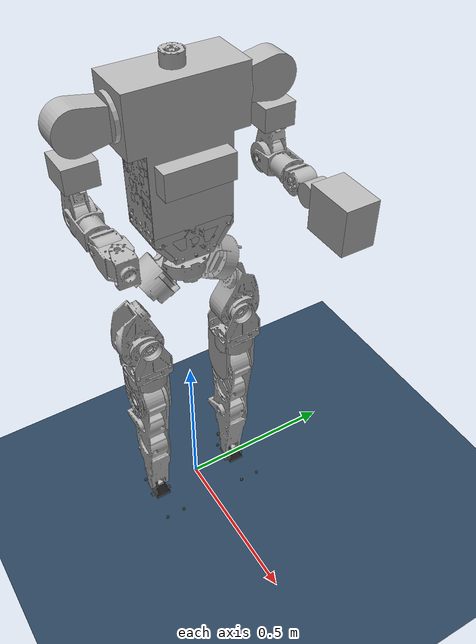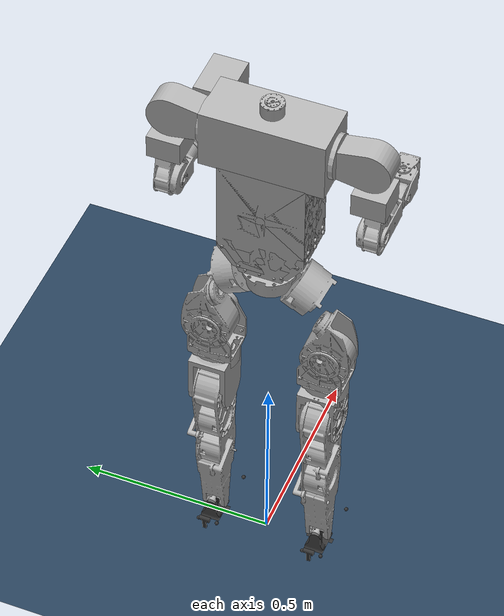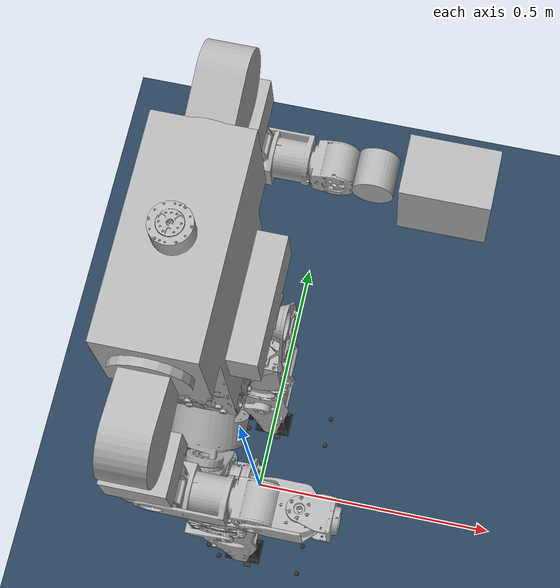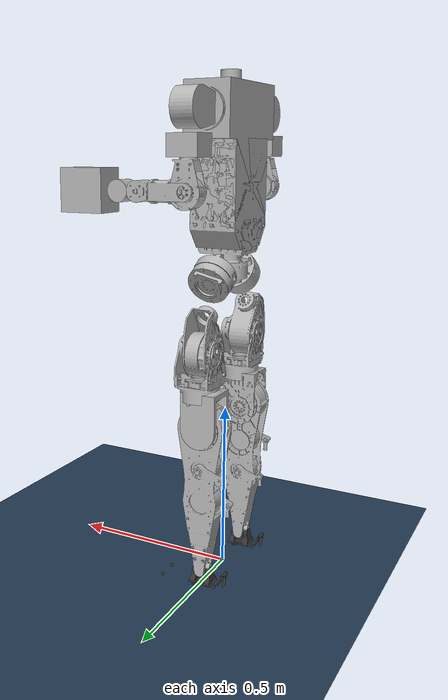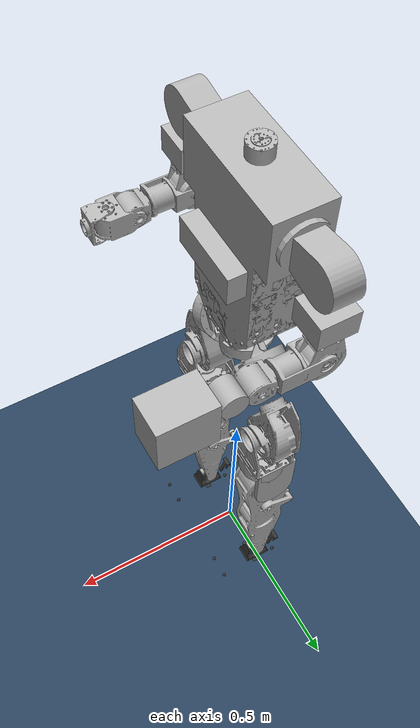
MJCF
<mujoco model="air_4.7">
  <compiler angle="radian" meshdir="../meshes"/>

  <default>
    <joint frictionloss="0.1"/>
  </default>

  <asset>
    <mesh name="pelvis_link.STL" file="pelvis_link.STL"/>
    <mesh name="waist_yaw_link.STL" file="waist_yaw_link.STL"/>
    <mesh name="waist_roll_link.STL" file="waist_roll_link.STL"/>
    <mesh name="torso_link.STL" file="torso_link.STL"/>
    <mesh name="right_shoulder_pitch_link.STL" file="right_shoulder_pitch_link.STL"/>
    <mesh name="right_shoulder_roll_link.STL" file="right_shoulder_roll_link.STL"/>
    <mesh name="right_shoulder_yaw_link.STL" file="right_shoulder_yaw_link.STL"/>
    <mesh name="right_elbow_link.STL" file="right_elbow_link.STL"/>
    <mesh name="right_wrist_roll_link.STL" file="right_wrist_roll_link.STL"/>
    <mesh name="right_wrist_yaw_link.STL" file="right_wrist_yaw_link.STL"/>
    <mesh name="right_wrist_pitch_link.STL" file="right_wrist_pitch_link.STL"/>
    <mesh name="left_shoulder_pitch_link.STL" file="left_shoulder_pitch_link.STL"/>
    <mesh name="left_shoulder_roll_link.STL" file="left_shoulder_roll_link.STL"/>
    <mesh name="left_shoulder_yaw_link.STL" file="left_shoulder_yaw_link.STL"/>
    <mesh name="left_elbow_link.STL" file="left_elbow_link.STL"/>
    <mesh name="left_wrist_roll_link.STL" file="left_wrist_roll_link.STL"/>
    <mesh name="left_wrist_yaw_link.STL" file="left_wrist_yaw_link.STL"/>
    <mesh name="left_wrist_pitch_link.STL" file="left_wrist_pitch_link.STL"/>
    <mesh name="right_hip_pitch_link.STL" file="right_hip_pitch_link.STL"/>
    <mesh name="right_hip_roll_link.STL" file="right_hip_roll_link.STL"/>
    <mesh name="right_hip_yaw_link.STL" file="right_hip_yaw_link.STL"/>
    <mesh name="right_knee_link.STL" file="right_knee_link.STL"/>
    <mesh name="right_ankle_pitch_link.STL" file="right_ankle_pitch_link.STL"/>
    <mesh name="right_ankle_roll_link.STL" file="right_ankle_roll_link.STL"/>
    <mesh name="left_hip_pitch_link.STL" file="left_hip_pitch_link.STL"/>
    <mesh name="left_hip_roll_link.STL" file="left_hip_roll_link.STL"/>
    <mesh name="left_hip_yaw_link.STL" file="left_hip_yaw_link.STL"/>
    <mesh name="left_knee_link.STL" file="left_knee_link.STL"/>
    <mesh name="left_ankle_pitch_link.STL" file="left_ankle_pitch_link.STL"/>
    <mesh name="left_ankle_roll_link.STL" file="left_ankle_roll_link.STL"/>
    <texture type="skybox" builtin="flat" rgb1="0 0 0" rgb2="0 0 0" width="512" height="3072"/>
    <texture type="2d" name="groundplane" builtin="checker" mark="edge" rgb1="0.2 0.3 0.4" rgb2="0.1 0.2 0.3" markrgb="0.8 0.8 0.8" width="300" height="300"/>
    <material name="groundplane" texture="groundplane" texuniform="true" texrepeat="5 5" reflectance="0.2"/>
  </asset>

  <worldbody>
    <light pos="1 0 3.5" dir="0 0 -1" directional="true"/>
    <body name="pelvis_link" pos="0 0 0.8835">
      <inertial pos="0.0000 0.0000 -0.0475" mass="1.655040" diaginertia="0.0187 0.0044 0.0193"/>
      <joint name="floating_base_joint" type="free" limited="false" actuatorfrclimited="false"/>
      <geom type="mesh" contype="0" conaffinity="0" group="1" density="0" rgba="0.7 0.7 0.7 1" mesh="pelvis_link.STL"/>
      <geom type="mesh" rgba="0.7 0.7 0.7 1" mesh="pelvis_link.STL"/>
      <site name="imu_in_pelvis" size="0.01" pos="0 0 0"/>
      <body name="waist_yaw_link" pos="0.0000 0.0000 0.0000" euler="0.0000 0.0000 0.0000">
        <joint name="waist_yaw_joint" pos="0 0 0" axis="0 0 1" range="0 0" limited="true" actuatorfrcrange="-88 88" armature="0.01017752"/>
        <inertial pos="0.0000 0.0000 0.0450" mass="2" diaginertia="0 0 0"/>
        <geom type="mesh" contype="0" conaffinity="0" group="1" density="0" rgba="0.7 0.7 0.7 1" mesh="waist_yaw_link.STL"/>
        <geom type="mesh" rgba="0.7 0.7 0.7 1" mesh="waist_yaw_link.STL"/>
        <body name="waist_roll_link" pos="0.0000 0.0000 0.0960" euler="0.0000 0.0000 0.0000">
          <joint name="waist_roll_joint" pos="0 0 0" axis="1 0 0" range="0 0" limited="true" actuatorfrcrange="-50 50" armature="0.00721945"/>
          <inertial pos="0.0000 0.0000 0.0000" mass="1" diaginertia="0 0 0"/>
          <geom type="mesh" contype="0" conaffinity="0" group="1" density="0" rgba="0.7 0.7 0.7 1" mesh="waist_roll_link.STL"/>
          <geom type="mesh" rgba="0.7 0.7 0.7 1" mesh="waist_roll_link.STL"/>
          <body name="torso_link" pos="0.0000 0.0000 0.0060" euler="0.0000 0.0000 0.0000">
            <joint name="torso_joint" pos="0 0 0" axis="0 0 1" range="0 0" limited="true" actuatorfrcrange="-200 200" armature="0.01017752"/>
            <inertial pos="0.0000 0.0000 0.2484" mass="16.454622" diaginertia="0.3370 0.2728 0.1102"/>
            <geom type="mesh" contype="0" conaffinity="0" group="1" density="0" rgba="0.7 0.7 0.7 1" mesh="torso_link.STL"/>
            <geom type="mesh" rgba="0.7 0.7 0.7 1" mesh="torso_link.STL"/>
            <site name="imu_in_torso" size="0.01" pos="0 0 0.2"/>
            <body name="right_shoulder_pitch_link" pos="0.0000 -0.1653 0.3727" euler="0.0000 0.0000 0.0000">
              <joint name="right_shoulder_pitch_joint" pos="0 0 0" axis="0 1 0" range="-2 2" actuatorfrcrange="-40 40" armature="0.003609725"/>
              <inertial pos="0.0000 -0.0638 0.0000" mass="2.595722" diaginertia="0.0015 0.0008 0.0012"/>
              <geom type="mesh" contype="0" conaffinity="0" group="1" density="0" rgba="0.7 0.7 0.7 1" mesh="right_shoulder_pitch_link.STL"/>
              <geom type="mesh" rgba="0.7 0.7 0.7 1" mesh="right_shoulder_pitch_link.STL"/>
              <body name="right_shoulder_roll_link" pos="0.0000 -0.08475 0.0000" euler="0.0000 0.0000 0.0000">
                <joint name="right_shoulder_roll_joint" pos="0 0 0" axis="1 0 0" range="-3.14 0" actuatorfrcrange="-40 40" armature="0.003609725"/>
                <inertial pos="0.0000 0.0000 -0.0930" mass="0.86543" diaginertia="0.0004 0.0004 0.0005"/>
                <geom type="mesh" contype="0" conaffinity="0" group="1" density="0" rgba="0.7 0.7 0.7 1" mesh="right_shoulder_roll_link.STL"/>
                <geom type="mesh" rgba="0.7 0.7 0.7 1" mesh="right_shoulder_roll_link.STL"/>
                <body name="right_shoulder_yaw_link" pos="0.0000 0.0000 -0.1230" euler="0.0000 0.0000 0.0000">
                  <joint name="right_shoulder_yaw_joint" pos="0 0 0" axis="0 0 1" range="-1.5 0.5" actuatorfrcrange="-20 20" armature="0.003609725"/>
                  <inertial pos="0.0000 0.0000 -0.0870" mass="0.796124" diaginertia="0.0002 0.0003 0.0003"/>
                  <geom type="mesh" contype="0" conaffinity="0" group="1" density="0" rgba="0.7 0.7 0.7 1" mesh="right_shoulder_yaw_link.STL"/>
                  <geom type="mesh" rgba="0.7 0.7 0.7 1" mesh="right_shoulder_yaw_link.STL"/>
                  <body name="right_elbow_link" pos="0.0000 0.0000 -0.0870" euler="0.0000 0.0000 0.0000">
                    <joint name="right_elbow_joint" pos="0 0 0" axis="0 1 0" range="-3 0" actuatorfrcrange="-20 20" armature="0.003609725"/>
                    <inertial pos="0.0825 0.0000 0.0000" mass="0.490651" diaginertia="0.0001 0.0001 0.0001"/>
                    <geom type="mesh" contype="0" conaffinity="0" group="1" density="0" rgba="0.7 0.7 0.7 1" mesh="right_elbow_link.STL"/>
                    <geom type="mesh" rgba="0.7 0.7 0.7 1" mesh="right_elbow_link.STL"/>
                    <body name="right_wrist_roll_link" pos="0.1025 0.0000 0.0000" euler="0.0000 0.0000 0.0000">
                      <joint name="right_wrist_roll_joint" pos="0 0 0" axis="1 0 0" range="-1 1" actuatorfrcrange="-10 10" armature="0.003609725"/>
                      <inertial pos="0.0355 0.0000 0.0000" mass="0.385933" diaginertia="0.0001 0.0001 0.0001"/>
                      <geom type="mesh" contype="0" conaffinity="0" group="1" density="0" rgba="0.7 0.7 0.7 1" mesh="right_wrist_roll_link.STL"/>
                      <geom type="mesh" rgba="0.7 0.7 0.7 1" mesh="right_wrist_roll_link.STL"/>
                      <body name="right_wrist_yaw_link" pos="0.0355 0.0000 0.0000" euler="0.0000 0.0000 0.0000">
                        <joint name="right_wrist_yaw_joint" pos="0 0 0" axis="0 0 1" range="-1 1" actuatorfrcrange="-10 10" armature="0.00425"/>
                        <inertial pos="0.0600 0.0000 0.0000" mass="0.497661" diaginertia="0.0001 0.0001 0.0001"/>
                        <geom type="mesh" contype="0" conaffinity="0" group="1" density="0" rgba="0.7 0.7 0.7 1" mesh="right_wrist_yaw_link.STL"/>
                        <geom type="mesh" rgba="0.7 0.7 0.7 1" mesh="right_wrist_yaw_link.STL"/>
                        <body name="right_wrist_pitch_link" pos="0.0600 0.0000 0.0000" euler="0.0000 0.0000 0.0000">
                          <joint name="right_wrist_pitch_joint" pos="0 0 0" axis="0 1 0" range="-0.5 0.5" actuatorfrcrange="-10 10" armature="0.00425"/>
                          <inertial pos="0.1050 0.0000 0.0000" mass="1" diaginertia="0.0026 0.0037 0.0029"/>
                          <geom type="mesh" contype="0" conaffinity="0" group="1" density="0" rgba="0.7 0.7 0.7 1" mesh="right_wrist_pitch_link.STL"/>
                          <geom type="mesh" rgba="0.7 0.7 0.7 1" mesh="right_wrist_pitch_link.STL"/>
                        </body>
                      </body>
                    </body>
                  </body>
                </body>
              </body>
            </body>
            <body name="left_shoulder_pitch_link" pos="0.0000 0.1653 0.3727" euler="0.0000 0.0000 0.0000">
              <joint name="left_shoulder_pitch_joint" pos="0 0 0" axis="0 1 0" range="-2 2" actuatorfrcrange="-40 40" armature="0.003609725"/>
              <inertial pos="0.0000 0.0638 0.0000" mass="2.595722" diaginertia="0.0015 0.0008 0.0012"/>
              <geom type="mesh" contype="0" conaffinity="0" group="1" density="0" rgba="0.7 0.7 0.7 1" mesh="left_shoulder_pitch_link.STL"/>
              <geom type="mesh" rgba="0.7 0.7 0.7 1" mesh="left_shoulder_pitch_link.STL"/>
              <body name="left_shoulder_roll_link" pos="0.0000 0.08475 0.0000" euler="0.0000 0.0000 0.0000">
                <joint name="left_shoulder_roll_joint" pos="0 0 0" axis="1 0 0" range="0 3.14" actuatorfrcrange="-40 40" armature="0.003609725"/>
                <inertial pos="0.0000 0.0000 -0.0930" mass="0.86543" diaginertia="0.0004 0.0004 0.0005"/>
                <geom type="mesh" contype="0" conaffinity="0" group="1" density="0" rgba="0.7 0.7 0.7 1" mesh="left_shoulder_roll_link.STL"/>
                <geom type="mesh" rgba="0.7 0.7 0.7 1" mesh="left_shoulder_roll_link.STL"/>
                <body name="left_shoulder_yaw_link" pos="0.0000 0.0000 -0.1230" euler="0.0000 0.0000 0.0000">
                  <joint name="left_shoulder_yaw_joint" pos="0 0 0" axis="0 0 1" range="-0.5 1.5" actuatorfrcrange="-20 20" armature="0.003609725"/>
                  <inertial pos="0.0000 0.0000 -0.0870" mass="0.796124" diaginertia="0.0002 0.0003 0.0003"/>
                  <geom type="mesh" contype="0" conaffinity="0" group="1" density="0" rgba="0.7 0.7 0.7 1" mesh="left_shoulder_yaw_link.STL"/>
                  <geom type="mesh" rgba="0.7 0.7 0.7 1" mesh="left_shoulder_yaw_link.STL"/>
                  <body name="left_elbow_link" pos="0.0000 0.0000 -0.0870" euler="0.0000 0.0000 0.0000">
                    <joint name="left_elbow_joint" pos="0 0 0" axis="0 1 0" range="-3 0" actuatorfrcrange="-20 20" armature="0.003609725"/>
                    <inertial pos="0.0825 0.0000 0.0000" mass="0.490651" diaginertia="0.0001 0.0001 0.0001"/>
                    <geom type="mesh" contype="0" conaffinity="0" group="1" density="0" rgba="0.7 0.7 0.7 1" mesh="left_elbow_link.STL"/>
                    <geom type="mesh" rgba="0.7 0.7 0.7 1" mesh="left_elbow_link.STL"/>
                    <body name="left_wrist_roll_link" pos="0.1025 0.0000 0.0000" euler="0.0000 0.0000 0.0000">
                      <joint name="left_wrist_roll_joint" pos="0 0 0" axis="1 0 0" range="-1 1" actuatorfrcrange="-10 10" armature="0.003609725"/>
                      <inertial pos="0.0355 0.0000 0.0000" mass="0.385933" diaginertia="0.0001 0.0001 0.0001"/>
                      <geom type="mesh" contype="0" conaffinity="0" group="1" density="0" rgba="0.7 0.7 0.7 1" mesh="left_wrist_roll_link.STL"/>
                      <geom type="mesh" rgba="0.7 0.7 0.7 1" mesh="left_wrist_roll_link.STL"/>
                      <body name="left_wrist_yaw_link" pos="0.0355 0.0000 0.0000" euler="0.0000 0.0000 0.0000">
                        <joint name="left_wrist_yaw_joint" pos="0 0 0" axis="0 0 1" range="-1 1" actuatorfrcrange="-10 10" armature="0.00425"/>
                        <inertial pos="0.0600 0.0000 0.0000" mass="0.497661" diaginertia="0.0001 0.0001 0.0001"/>
                        <geom type="mesh" contype="0" conaffinity="0" group="1" density="0" rgba="0.7 0.7 0.7 1" mesh="left_wrist_yaw_link.STL"/>
                        <geom type="mesh" rgba="0.7 0.7 0.7 1" mesh="left_wrist_yaw_link.STL"/>
                        <body name="left_wrist_pitch_link" pos="0.0600 0.0000 0.0000" euler="0.0000 0.0000 0.0000">
                          <joint name="left_wrist_pitch_joint" pos="0 0 0" axis="0 1 0" range="-0.5 0.5" actuatorfrcrange="-10 10" armature="0.00425"/>
                          <inertial pos="0.1050 0.0000 0.0000" mass="1" diaginertia="0.0026 0.0037 0.0029"/>
                          <geom type="mesh" contype="0" conaffinity="0" group="1" density="0" rgba="0.7 0.7 0.7 1" mesh="left_wrist_pitch_link.STL"/>
                          <geom type="mesh" rgba="0.7 0.7 0.7 1" mesh="left_wrist_pitch_link.STL"/>
                        </body>
                      </body>
                    </body>
                  </body>
                </body>
              </body>
            </body>
          </body>
        </body>
      </body>
      <body name="right_hip_pitch_link" pos="0.0000 -0.1272 -0.0734" euler="0.5236 0.0000 0.0000">
        <joint name="right_hip_pitch_joint" pos="0 0 0" axis="0 1 0" range="-1 1" actuatorfrcrange="-88 88" armature="0.01017752"/>
        <inertial pos="0.003170 -0.072665 -0.0590" fullinertia="0.005735 0.004446 0.003831 0 0 0.0006" mass="2.532101"/>
        <geom type="mesh" contype="0" conaffinity="0" group="1" density="0" rgba="0.7 0.7 0.7 1" mesh="right_hip_pitch_link.STL"/>
        <geom type="mesh" rgba="0.7 0.7 0.7 1" mesh="right_hip_pitch_link.STL"/>
        <body name="right_hip_roll_link" pos="0.0450 -0.0628 -0.0779" euler="-0.5236 0.0000 0.0000">
          <joint name="right_hip_roll_joint" pos="0 0 0" axis="1 0 0" range="-0.5 1" actuatorfrcrange="-139 139" armature="0.025101925"/>
          <inertial pos="-0.030114 0.0000 -0.104843" mass="1.874978" diaginertia="0.004984 0.005333 0.003368"/>
          <geom type="mesh" contype="0" conaffinity="0" group="1" density="0" rgba="0.7 0.7 0.7 1" mesh="right_hip_roll_link.STL"/>
          <geom type="mesh" rgba="0.7 0.7 0.7 1" mesh="right_hip_roll_link.STL"/>
          <body name="right_hip_yaw_link" pos="-0.0450 0.0000 -0.1150" euler="0.0000 0.0000 0.0000">
            <joint name="right_hip_yaw_joint" pos="0 0 0" axis="0 0 -1" range="-0.5 0.5" actuatorfrcrange="-88 88" armature="0.01017752"/>
            <inertial pos="0.0000 0.0000 -0.063472" mass="0.62" diaginertia="0.002551 0.002272 0.001534"/>
            <geom type="mesh" contype="0" conaffinity="0" group="1" density="0" rgba="0.7 0.7 0.7 1" mesh="right_hip_yaw_link.STL"/>
            <geom type="mesh" rgba="0.7 0.7 0.7 1" mesh="right_hip_yaw_link.STL"/>
            <body name="right_knee_link" pos="0.0000 -0.0350 -0.1137" euler="0.0000 0.0000 0.0000">
              <joint name="right_knee_joint" pos="0 0 0" axis="0 1 0" range="-0.5 1" actuatorfrcrange="-139 139" armature="0.025101925"/>
              <inertial pos="-0.003476 0.034199 -0.127702" fullinertia="0.113965 0.117284 0.008984 0 -0.003267 0.001131" mass="6.285"/>
              <geom type="mesh" contype="0" conaffinity="0" group="1" density="0" rgba="0.7 0.7 0.7 1" mesh="right_knee_link.STL"/>
              <geom type="mesh" rgba="0.7 0.7 0.7 1" mesh="right_knee_link.STL"/>
              <body name="right_ankle_pitch_link" pos="0.0000 0.0350 -0.4335" euler="0.0000 0.0000 0.0000">
                <joint name="right_ankle_pitch_joint" pos="0 0 0" axis="0 1 0" range="-0.5 0.5" actuatorfrcrange="-50 50" armature="0.00721945"/>
                <inertial pos="0.009626 0.0000 -0.035953" fullinertia="0.000745 0.002611 0.002322 0 0.000253 0" mass="0.861017"/>
                <geom type="mesh" contype="0" conaffinity="0" group="1" density="0" rgba="0.7 0.7 0.7 1" mesh="right_ankle_pitch_link.STL"/>
                <geom type="mesh" rgba="0.7 0.7 0.7 1" mesh="right_ankle_pitch_link.STL"/>
                <body name="right_ankle_roll_link" pos="0.0000 0.0000 -0.0150" euler="0.0000 0.0000 0.0000">
                  <joint name="right_ankle_roll_joint" pos="0 0 0" axis="1 0 0" range="-0.5 0.5" actuatorfrcrange="-50 50" armature="0.00721945"/>
                  <inertial pos="0.009626 0.0000 -0.035953" fullinertia="0.000745 0.002611 0.002322 0 0.000253 0" mass="0.861017"/>
                  <geom type="mesh" contype="0" conaffinity="0" group="1" density="0" rgba="0.2 0.2 0.2 1" mesh="right_ankle_roll_link.STL"/>
                  <geom size="0.005" pos="-0.05 0.025 -0.03" rgba="0.2 0.2 0.2 1"/>
                  <geom size="0.005" pos="-0.05 -0.025 -0.03" rgba="0.2 0.2 0.2 1"/>
                  <geom size="0.005" pos="0.12 0.03 -0.03" rgba="0.2 0.2 0.2 1"/>
                  <geom size="0.005" pos="0.12 -0.03 -0.03" rgba="0.2 0.2 0.2 1"/>
                </body>
              </body>
            </body>
          </body>
        </body>
      </body>
      <body name="left_hip_pitch_link" pos="0.0000 0.1272 -0.0734" euler="-0.5236 0.0000 0.0000">
        <joint name="0_left_hip_pitch_joint" pos="0 0 0" axis="0 1 0" range="-1 1" actuatorfrcrange="-88 88" armature="0.01017752"/>
        <inertial pos="0.003170 0.072665 -0.0590" fullinertia="0.005735 0.004446 0.003831 0 0 -0.0006" mass="2.532101"/>
        <geom type="mesh" contype="0" conaffinity="0" group="1" density="0" rgba="0.7 0.7 0.7 1" mesh="left_hip_pitch_link.STL"/>
        <geom type="mesh" rgba="0.7 0.7 0.7 1" mesh="left_hip_pitch_link.STL"/>
        <body name="left_hip_roll_link" pos="0.0450 0.0628 -0.0779" euler="0.5236 0.0000 0.0000">
          <joint name="left_hip_roll_joint" pos="0 0 0" axis="1 0 0" range="-0.5 1" actuatorfrcrange="-139 139" armature="0.025101925"/>
          <inertial pos="-0.030114 0.0000 -0.104843" mass="1.874978" diaginertia="0.004984 0.00533 0.003368"/>
          <geom type="mesh" contype="0" conaffinity="0" group="1" density="0" rgba="0.7 0.7 0.7 1" mesh="left_hip_roll_link.STL"/>
          <geom type="mesh" rgba="0.7 0.7 0.7 1" mesh="left_hip_roll_link.STL"/>
          <body name="left_hip_yaw_link" pos="-0.0450 0.0000 -0.1150" euler="0.0000 0.0000 0.0000">
            <joint name="left_hip_yaw_joint" pos="0 0 0" axis="0 0 -1" range="-0.5 0.5" actuatorfrcrange="-88 88" armature="0.01017752"/>
            <inertial pos="0.000137 0.002740 -0.063472" mass="0.62" diaginertia="0.002551 0.002272 0.001534"/>
            <geom type="mesh" contype="0" conaffinity="0" group="1" density="0" rgba="0.7 0.7 0.7 1" mesh="left_hip_yaw_link.STL"/>
            <geom type="mesh" rgba="0.7 0.7 0.7 1" mesh="left_hip_yaw_link.STL"/>
            <body name="left_knee_link" pos="0.0000 0.0350 -0.1137" euler="0.0000 0.0000 0.0000">
              <joint name="left_knee_joint" pos="0 0 0" axis="0 1 0" range="-0.5 1" actuatorfrcrange="-139 139" armature="0.025101925"/>
              <inertial pos="-0.003476 -0.034199 -0.127702" fullinertia="0.113965 0.117284 0.008984 0 -0.003267 -0.001131" mass="6.285"/>
              <geom type="mesh" contype="0" conaffinity="0" group="1" density="0" rgba="0.7 0.7 0.7 1" mesh="left_knee_link.STL"/>
              <geom type="mesh" rgba="0.7 0.7 0.7 1" mesh="left_knee_link.STL"/>
              <body name="left_ankle_pitch_link" pos="0.0000 -0.0350 -0.4335" euler="0.0000 0.0000 0.0000">
                <joint name="left_ankle_pitch_joint" pos="0 0 0" axis="0 1 0" range="-0.5 0.5" actuatorfrcrange="-50 50" armature="0.00721945"/>
                <inertial pos="0.009626 0.0000 -0.035953" fullinertia="0.000745 0.002611 0.002322 0 0.000253 0" mass="0.861017"/>
                <geom type="mesh" contype="0" conaffinity="0" group="1" density="0" rgba="0.7 0.7 0.7 1" mesh="left_ankle_pitch_link.STL"/>
                <geom type="mesh" rgba="0.7 0.7 0.7 1" mesh="left_ankle_pitch_link.STL"/>
                <body name="left_ankle_roll_link" pos="0.0000 0.0000 -0.0150" euler="0.0000 0.0000 0.0000">
                  <joint name="left_ankle_roll_joint" pos="0 0 0" axis="1 0 0" range="-0.5 0.5" actuatorfrcrange="-50 50" armature="0.00721945"/>
                  <inertial pos="0.009626 0.0000 -0.035953" fullinertia="0.000745 0.002611 0.002322 0 0.000253 0" mass="0.861017"/>
                  <geom type="mesh" contype="0" conaffinity="0" group="1" density="0" rgba="0.2 0.2 0.2 1" mesh="left_ankle_roll_link.STL"/>
                  <geom size="0.005" pos="-0.05 0.025 -0.03" rgba="0.2 0.2 0.2 1"/>
                  <geom size="0.005" pos="-0.05 -0.025 -0.03" rgba="0.2 0.2 0.2 1"/>
                  <geom size="0.005" pos="0.12 0.03 -0.03" rgba="0.2 0.2 0.2 1"/>
                  <geom size="0.005" pos="0.12 -0.03 -0.03" rgba="0.2 0.2 0.2 1"/>
                </body>
              </body>
            </body>
          </body>
        </body>
      </body>
    </body>
    <geom name="floor" size="0 0 0.05" type="plane" material="groundplane"/>
  </worldbody>

  <actuator>
    <motor name="waist_yaw_joint" joint="waist_yaw_joint"/>
    <motor name="waist_roll_joint" joint="waist_roll_joint"/>
    <motor name="torso_joint" joint="torso_joint"/>
    <motor name="right_shoulder_pitch_joint" joint="right_shoulder_pitch_joint"/>
    <motor name="right_shoulder_roll_joint" joint="right_shoulder_roll_joint"/>
    <motor name="right_shoulder_yaw_joint" joint="right_shoulder_yaw_joint"/>
    <motor name="right_elbow_joint" joint="right_elbow_joint"/>
    <motor name="right_wrist_roll_joint" joint="right_wrist_roll_joint"/>
    <motor name="right_wrist_yaw_joint" joint="right_wrist_yaw_joint"/>
    <motor name="right_wrist_pitch_joint" joint="right_wrist_pitch_joint"/>
    <motor name="left_shoulder_pitch_joint" joint="left_shoulder_pitch_joint"/>
    <motor name="left_shoulder_roll_joint" joint="left_shoulder_roll_joint"/>
    <motor name="left_shoulder_yaw_joint" joint="left_shoulder_yaw_joint"/>
    <motor name="left_elbow_joint" joint="left_elbow_joint"/>
    <motor name="left_wrist_roll_joint" joint="left_wrist_roll_joint"/>
    <motor name="left_wrist_yaw_joint" joint="left_wrist_yaw_joint"/>
    <motor name="left_wrist_pitch_joint" joint="left_wrist_pitch_joint"/>
    <motor name="right_hip_pitch_joint" joint="right_hip_pitch_joint"/>
    <motor name="right_hip_roll_joint" joint="right_hip_roll_joint"/>
    <motor name="right_hip_yaw_joint" joint="right_hip_yaw_joint"/>
    <motor name="right_knee_joint" joint="right_knee_joint"/>
    <motor name="right_ankle_pitch_joint" joint="right_ankle_pitch_joint"/>
    <motor name="right_ankle_roll_joint" joint="right_ankle_roll_joint"/>
    <motor name="0_left_hip_pitch_joint" joint="0_left_hip_pitch_joint"/>
    <motor name="left_hip_roll_joint" joint="left_hip_roll_joint"/>
    <motor name="left_hip_yaw_joint" joint="left_hip_yaw_joint"/>
    <motor name="left_knee_joint" joint="left_knee_joint"/>
    <motor name="left_ankle_pitch_joint" joint="left_ankle_pitch_joint"/>
    <motor name="left_ankle_roll_joint" joint="left_ankle_roll_joint"/>
  </actuator>

  <keyframe>
    <key name="home"
    qpos=
    "0 0 0.74
    1 0 0 0
    0 0 0
    0.3 -0.2 0 -0.3 0 0 0
    0.3 0.2 0 -0.3 0 0 0
    -0.212 0 0 0.212 -0.070 0
    -0.212 0 0 0.212 -0.070 0"/>
  </keyframe>

  <statistic center="1.0 0.7 1.0" extent="0.8"/>
  <visual>
    <headlight diffuse="0.6 0.6 0.6" ambient="0.1 0.1 0.1" specular="0.9 0.9 0.9"/>
    <rgba haze="0.15 0.25 0.35 1"/>
    <global azimuth="-140" elevation="-20"/>
  </visual>
</mujoco>
